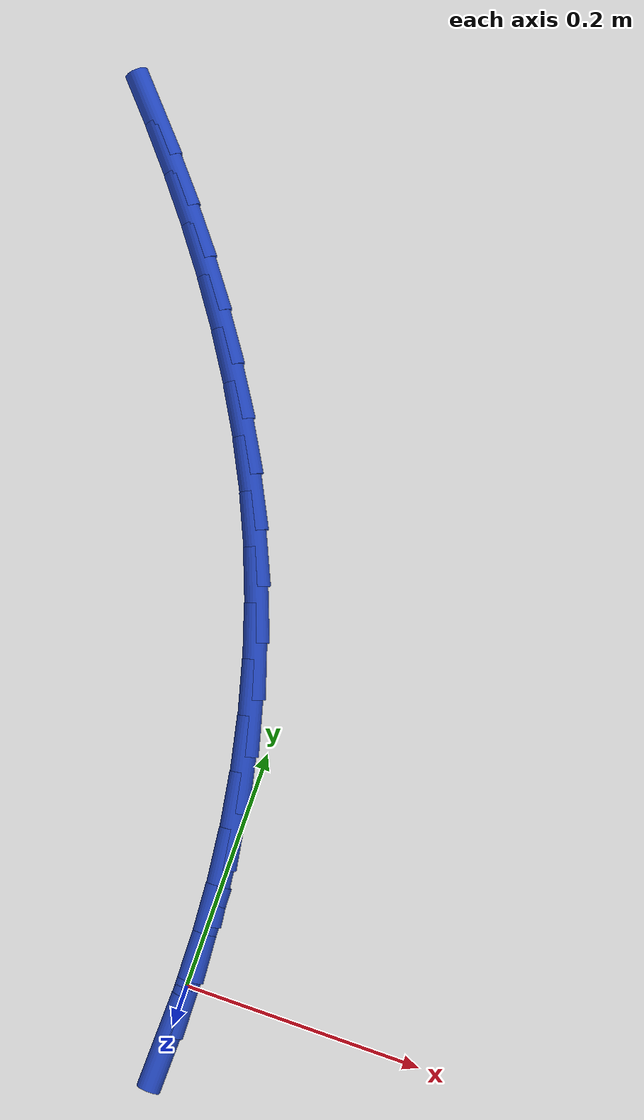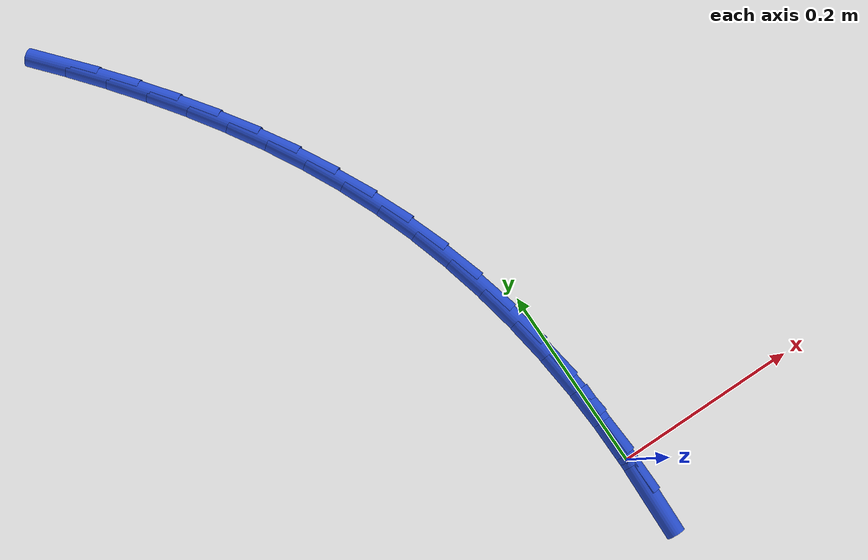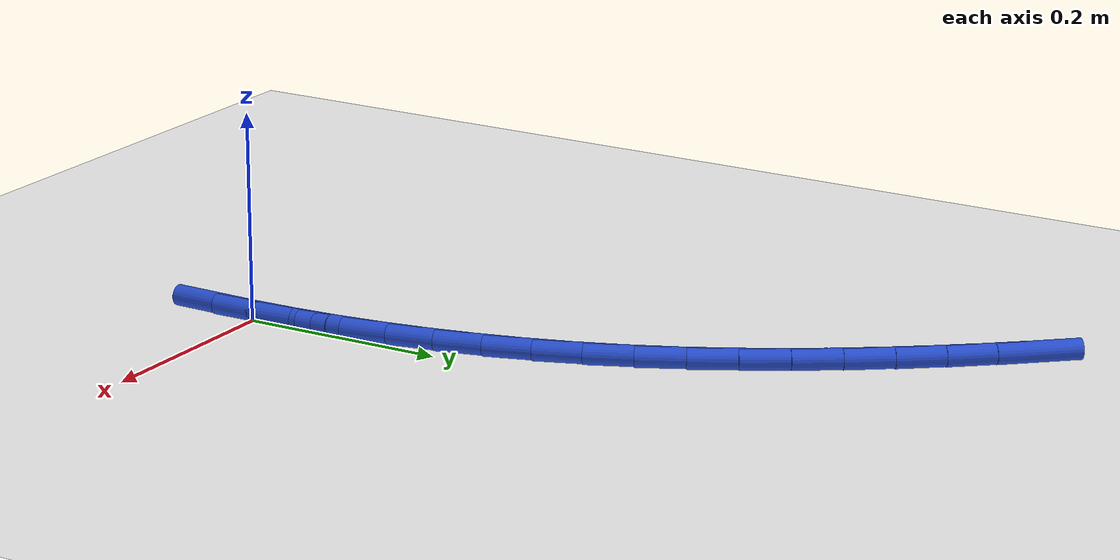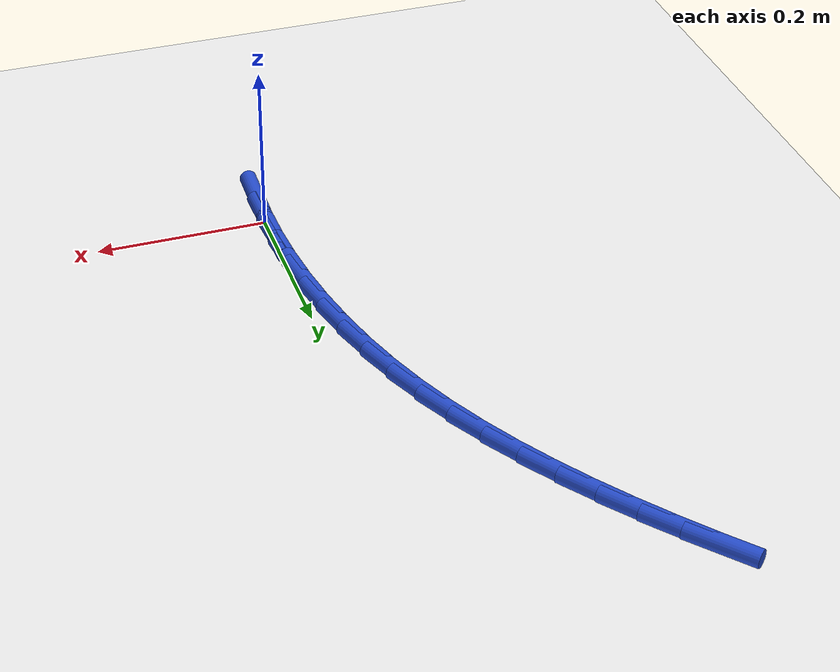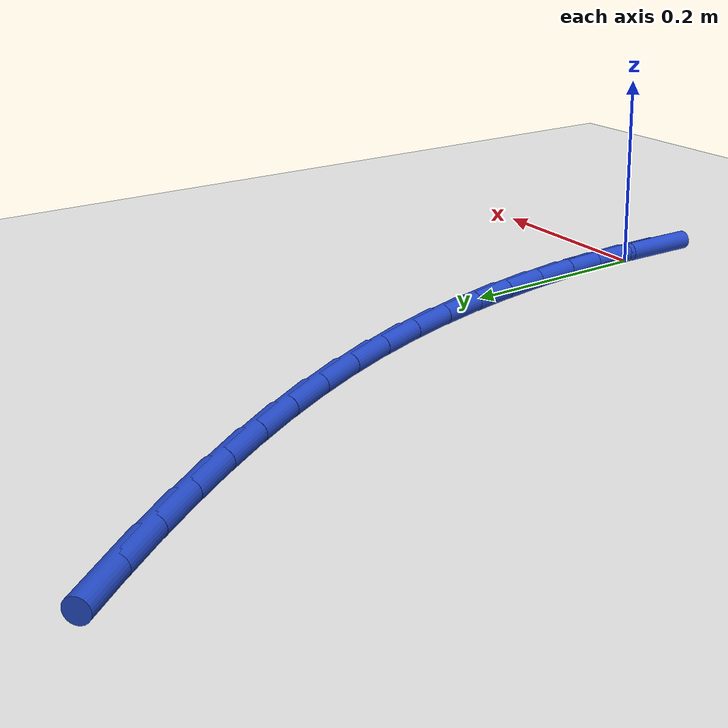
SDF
<sdf version="1.6">
 <world name="default">
  <model name="ground_plane">
   <static>1</static>
   <link name="link">
    <collision name="collision">
     <geometry><plane><normal>0 0 1</normal><size>100 100</size></plane></geometry>
     <surface><friction><ode><mu>100</mu><mu2>50</mu2></ode></friction></surface>
    </collision>
    <visual name="visual">
     <cast_shadows>0</cast_shadows>
     <geometry><plane><normal>0 0 1</normal><size>100 100</size></plane></geometry>
     <material>
      <script><uri>file://media/materials/scripts/gazebo.material</uri><name>Gazebo/WhiteGlow</name></script>
     </material>
    </visual>
   </link>
  </model>
  <model name="line">
   <link name="link_0">
    <pose>-2.949029909160572e-17 1.3877787807814457e-17 0.01 0 1.57 -1.5533603134512748</pose>
    <collision name="collision">
     <geometry><cylinder><radius>0.01</radius><length>0.08</length></cylinder></geometry>
    </collision>
    <visual name="visual">
     <material>
      <script><name>Gazebo/Blue</name><uri>file://media/materials/scripts/gazebo.material</uri></script>
     </material>
     <geometry><cylinder><radius>0.01</radius><length>0.08</length></cylinder></geometry>
    </visual>
   </link>
   <link name="link_1">
    <pose>-0.0008119482922708272 0.0465625939390624 0.01 0 1.57 -1.5071413448697262</pose>
    <collision name="collision">
     <geometry><cylinder><radius>0.01</radius><length>0.08</length></cylinder></geometry>
    </collision>
    <visual name="visual">
     <material>
      <script><name>Gazebo/Blue</name><uri>file://media/materials/scripts/gazebo.material</uri></script>
     </material>
     <geometry><cylinder><radius>0.01</radius><length>0.08</length></cylinder></geometry>
    </visual>
   </link>
   <link name="link_2">
    <pose>-0.0037770765566050133 0.09308090618094901 0.01 0 1.57 -1.4602313086289629</pose>
    <collision name="collision">
     <geometry><cylinder><radius>0.01</radius><length>0.08</length></cylinder></geometry>
    </collision>
    <visual name="visual">
     <material>
      <script><name>Gazebo/Blue</name><uri>file://media/materials/scripts/gazebo.material</uri></script>
     </material>
     <geometry><cylinder><radius>0.01</radius><length>0.08</length></cylinder></geometry>
    </visual>
   </link>
   <link name="link_3">
    <pose>-0.008922433877695061 0.13942805660841073 0.01 0 1.57 -1.412463388067983</pose>
    <collision name="collision">
     <geometry><cylinder><radius>0.01</radius><length>0.08</length></cylinder></geometry>
    </collision>
    <visual name="visual">
     <material>
      <script><name>Gazebo/Blue</name><uri>file://media/materials/scripts/gazebo.material</uri></script>
     </material>
     <geometry><cylinder><radius>0.01</radius><length>0.08</length></cylinder></geometry>
    </visual>
   </link>
   <link name="link_4">
    <pose>-0.01627506934023347 0.18547716510419843 0.01 0 1.57 -1.3636806260696006</pose>
    <collision name="collision">
     <geometry><cylinder><radius>0.01</radius><length>0.08</length></cylinder></geometry>
    </collision>
    <visual name="visual">
     <material>
      <script><name>Gazebo/Blue</name><uri>file://media/materials/scripts/gazebo.material</uri></script>
     </material>
     <geometry><cylinder><radius>0.01</radius><length>0.08</length></cylinder></geometry>
    </visual>
   </link>
   <link name="link_5">
    <pose>-0.025862032028912706 0.23110135155106307 0.01 0 1.57 -1.313738531316304</pose>
    <collision name="collision">
     <geometry><cylinder><radius>0.01</radius><length>0.08</length></cylinder></geometry>
    </collision>
    <visual name="visual">
     <material>
      <script><name>Gazebo/Blue</name><uri>file://media/materials/scripts/gazebo.material</uri></script>
     </material>
     <geometry><cylinder><radius>0.01</radius><length>0.08</length></cylinder></geometry>
    </visual>
   </link>
   <link name="link_6">
    <pose>-0.037710371028425296 0.2761737358317557 0.01 0 1.57 -1.2625084227828178</pose>
    <collision name="collision">
     <geometry><cylinder><radius>0.01</radius><length>0.08</length></cylinder></geometry>
    </collision>
    <visual name="visual">
     <material>
      <script><name>Gazebo/Blue</name><uri>file://media/materials/scripts/gazebo.material</uri></script>
     </material>
     <geometry><cylinder><radius>0.01</radius><length>0.08</length></cylinder></geometry>
    </visual>
   </link>
   <link name="link_7">
    <pose>-0.05184713542346368 0.32056743782902697 0.01 0 1.57 -1.209881540126471</pose>
    <collision name="collision">
     <geometry><cylinder><radius>0.01</radius><length>0.08</length></cylinder></geometry>
    </collision>
    <visual name="visual">
     <material>
      <script><name>Gazebo/Blue</name><uri>file://media/materials/scripts/gazebo.material</uri></script>
     </material>
     <geometry><cylinder><radius>0.01</radius><length>0.08</length></cylinder></geometry>
    </visual>
   </link>
   <link name="link_8">
    <pose>-0.06829937429872035 0.36415557742562765 0.01 0 1.57 -1.1559580935545541</pose>
    <collision name="collision">
     <geometry><cylinder><radius>0.01</radius><length>0.08</length></cylinder></geometry>
    </collision>
    <visual name="visual">
     <material>
      <script><name>Gazebo/Blue</name><uri>file://media/materials/scripts/gazebo.material</uri></script>
     </material>
     <geometry><cylinder><radius>0.01</radius><length>0.08</length></cylinder></geometry>
    </visual>
   </link>
   <link name="link_9">
    <pose>-0.08708630432718735 0.4068147943207785 0.01 0 1.57 -1.1038081608523462</pose>
    <collision name="collision">
     <geometry><cylinder><radius>0.01</radius><length>0.08</length></cylinder></geometry>
    </collision>
    <visual name="visual">
     <material>
      <script><name>Gazebo/Blue</name><uri>file://media/materials/scripts/gazebo.material</uri></script>
     </material>
     <geometry><cylinder><radius>0.01</radius><length>0.08</length></cylinder></geometry>
    </visual>
   </link>
   <link name="link_10">
    <pose>-0.10809397328737348 0.4484815731357928 0.01 0 1.57 -1.0559559869276327</pose>
    <collision name="collision">
     <geometry><cylinder><radius>0.01</radius><length>0.08</length></cylinder></geometry>
    </collision>
    <visual name="visual">
     <material>
      <script><name>Gazebo/Blue</name><uri>file://media/materials/scripts/gazebo.material</uri></script>
     </material>
     <geometry><cylinder><radius>0.01</radius><length>0.08</length></cylinder></geometry>
    </visual>
   </link>
   <link name="link_11">
    <pose>-0.13109707784622399 0.48914243869560947 0.01 0 1.57 -1.0123253286820015</pose>
    <collision name="collision">
     <geometry><cylinder><radius>0.01</radius><length>0.08</length></cylinder></geometry>
    </collision>
    <visual name="visual">
     <material>
      <script><name>Gazebo/Blue</name><uri>file://media/materials/scripts/gazebo.material</uri></script>
     </material>
     <geometry><cylinder><radius>0.01</radius><length>0.08</length></cylinder></geometry>
    </visual>
   </link>
   <link name="link_12">
    <pose>-0.1558668896560805 0.5287854549964048 0.01 0 1.57 -0.9727207072776008</pose>
    <collision name="collision">
     <geometry><cylinder><radius>0.01</radius><length>0.08</length></cylinder></geometry>
    </collision>
    <visual name="visual">
     <material>
      <script><name>Gazebo/Blue</name><uri>file://media/materials/scripts/gazebo.material</uri></script>
     </material>
     <geometry><cylinder><radius>0.01</radius><length>0.08</length></cylinder></geometry>
    </visual>
   </link>
   <link name="link_13">
    <pose>-0.18217468036928475 0.5673986860343553 0.01 0 1.57 -0.9369302958949999</pose>
    <collision name="collision">
     <geometry><cylinder><radius>0.01</radius><length>0.08</length></cylinder></geometry>
    </collision>
    <visual name="visual">
     <material>
      <script><name>Gazebo/Blue</name><uri>file://media/materials/scripts/gazebo.material</uri></script>
     </material>
     <geometry><cylinder><radius>0.01</radius><length>0.08</length></cylinder></geometry>
    </visual>
   </link>
   <link name="link_14">
    <pose>-0.20979172163817839 0.6049701958056376 0.01 0 1.57 -0.904743029404285</pose>
    <collision name="collision">
     <geometry><cylinder><radius>0.01</radius><length>0.08</length></cylinder></geometry>
    </collision>
    <visual name="visual">
     <material>
      <script><name>Gazebo/Blue</name><uri>file://media/materials/scripts/gazebo.material</uri></script>
     </material>
     <geometry><cylinder><radius>0.01</radius><length>0.08</length></cylinder></geometry>
    </visual>
   </link>
   <link name="link_15">
    <pose>-0.23848928511510312 0.6414880483064276 0.01 0 1.57 -0.8759613745225202</pose>
    <collision name="collision">
     <geometry><cylinder><radius>0.01</radius><length>0.08</length></cylinder></geometry>
    </collision>
    <visual name="visual">
     <material>
      <script><name>Gazebo/Blue</name><uri>file://media/materials/scripts/gazebo.material</uri></script>
     </material>
     <geometry><cylinder><radius>0.01</radius><length>0.08</length></cylinder></geometry>
    </visual>
   </link>
   <link name="link_16">
    <pose>-0.2680386424524006 0.6769403075329019 0.01 0 1.57 -0.8504108662799478</pose>
    <collision name="collision">
     <geometry><cylinder><radius>0.01</radius><length>0.08</length></cylinder></geometry>
    </collision>
    <visual name="visual">
     <material>
      <script><name>Gazebo/Blue</name><uri>file://media/materials/scripts/gazebo.material</uri></script>
     </material>
     <geometry><cylinder><radius>0.01</radius><length>0.08</length></cylinder></geometry>
    </visual>
   </link>
   <link name="link_159">
    <pose>-0.001316007383754557 -0.046489791924218773 0.01 0 1.57 1.542496435839709</pose>
    <collision name="collision">
     <geometry><cylinder><radius>0.01</radius><length>0.08</length></cylinder></geometry>
    </collision>
    <visual name="visual">
     <material>
      <script><name>Gazebo/Blue</name><uri>file://media/materials/scripts/gazebo.material</uri></script>
     </material>
     <geometry><cylinder><radius>0.01</radius><length>0.08</length></cylinder></geometry>
    </visual>
   </link>
   <link name="link_160">
    <pose>-2.42861286636753e-17 1.1102230246251565e-16 0.01 0 1.57 -1.553403150227695</pose>
    <collision name="collision">
     <geometry><cylinder><radius>0.01</radius><length>0.08</length></cylinder></geometry>
    </collision>
    <visual name="visual">
     <material>
      <script><name>Gazebo/Blue</name><uri>file://media/materials/scripts/gazebo.material</uri></script>
     </material>
     <geometry><cylinder><radius>0.01</radius><length>0.08</length></cylinder></geometry>
    </visual>
   </link>
   <link name="link_161">
    <pose>-0.0008101235036164084 0.04657239034429314 0.01 0 1.57 -1.5534031502276953</pose>
    <collision name="collision">
     <geometry><cylinder><radius>0.01</radius><length>0.08</length></cylinder></geometry>
    </collision>
    <visual name="visual">
     <material>
      <script><name>Gazebo/Blue</name><uri>file://media/materials/scripts/gazebo.material</uri></script>
     </material>
     <geometry><cylinder><radius>0.01</radius><length>0.08</length></cylinder></geometry>
    </visual>
   </link>
  </model>
 </world>
</sdf>
